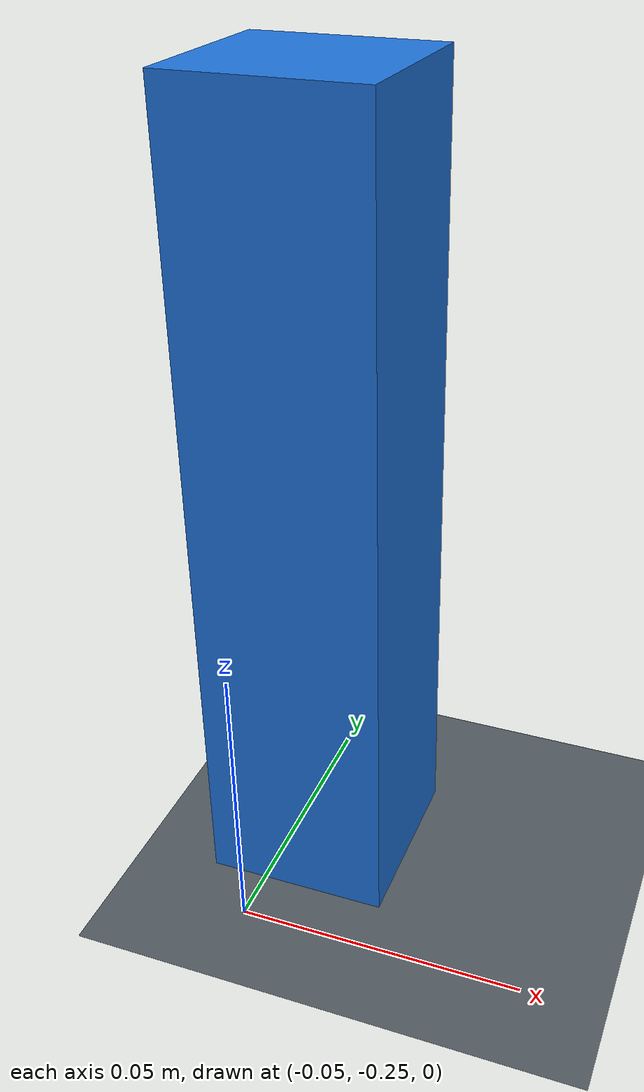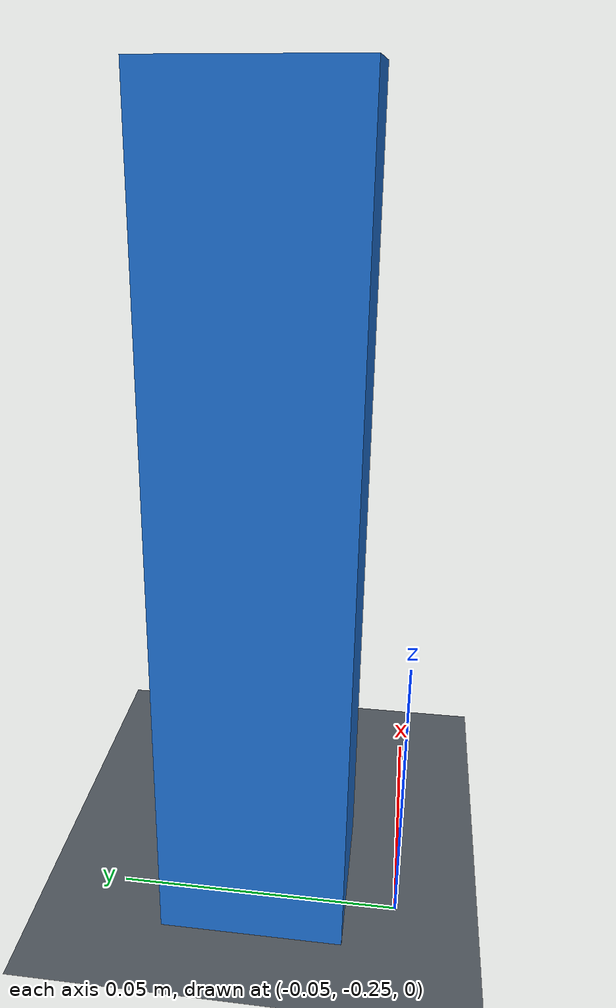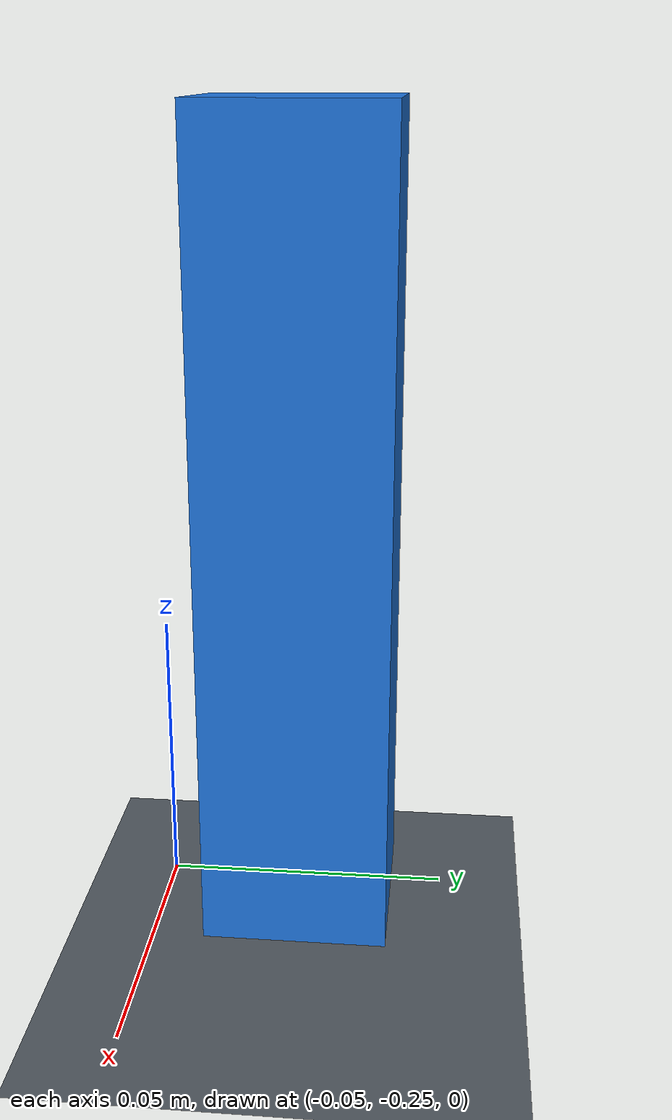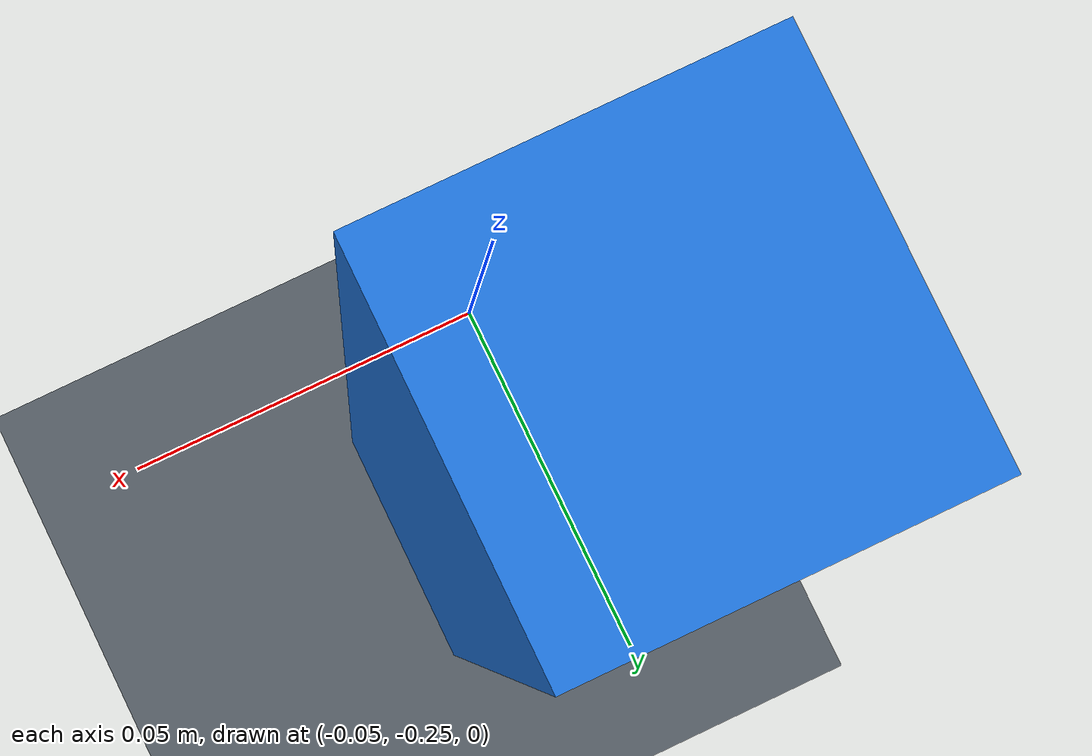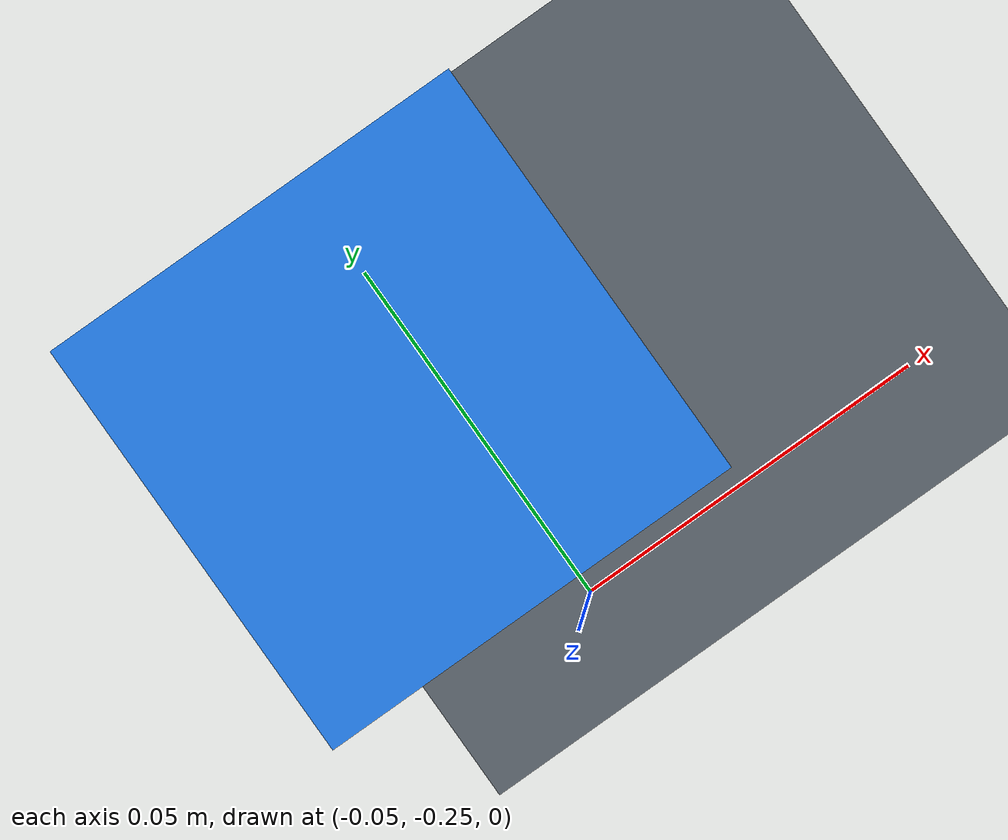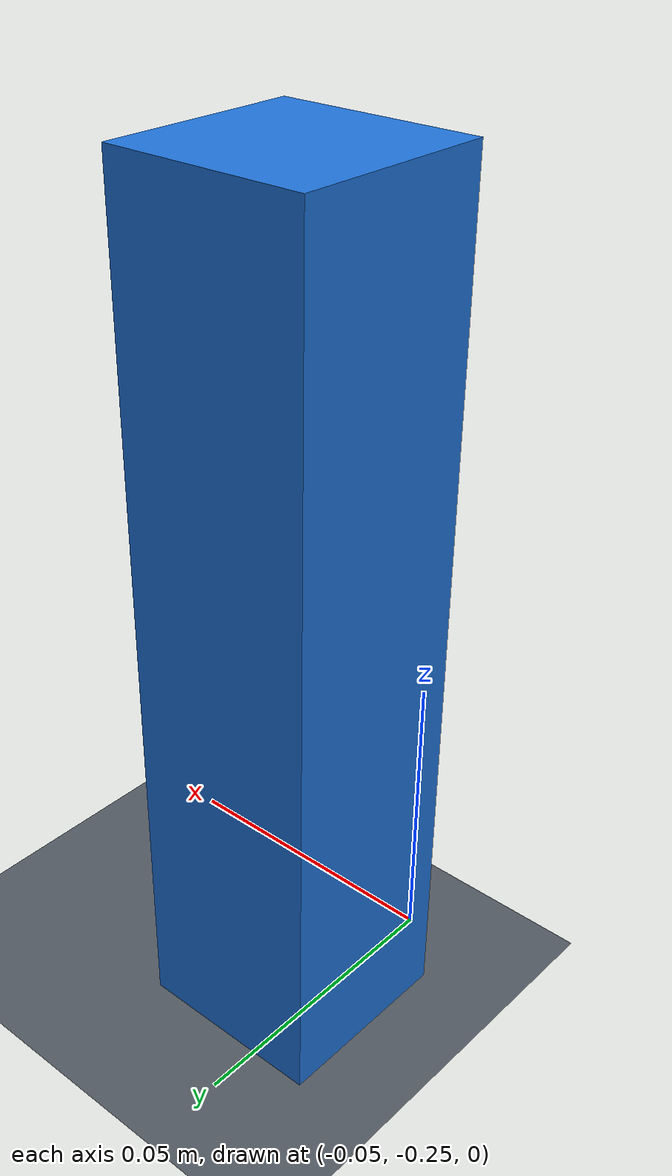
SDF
<sdf version="1.9">
 <world name="pick_and_place">
  <model name="ground">
   <static>true</static>
   <link name="ground_link">
    <collision name="ground_collision">
     <geometry><plane><normal>0 0 1</normal><size>8 8</size></plane></geometry>
    </collision>
    <visual name="ground_visual">
     <geometry><plane><normal>0 0 1</normal><size>8 8</size></plane></geometry>
     <material><diffuse>0.32 0.35 0.38 1</diffuse></material>
    </visual>
   </link>
  </model>
  <model name="pick_support">
   <static>true</static>
   <pose>-0.044 -0.225 0.070 0 0 0</pose>
   <link name="support_link">
    <collision name="pick_support_collision">
     <geometry><box><size>0.032 0.032 0.140</size></box></geometry>
     <surface>
      <friction><ode><mu>0.9</mu><mu2>0.9</mu2></ode></friction>
      <contact><ode><kp>100000</kp><kd>1.0</kd><max_vel>0.01</max_vel><min_depth>0.0001</min_depth></ode></contact>
     </surface>
    </collision>
    <visual name="pick_support_visual">
     <geometry><box><size>0.032 0.032 0.140</size></box></geometry>
     <material><diffuse>0.12 0.45 0.85 1</diffuse></material>
    </visual>
    <sensor name="pick_support_contact_sensor" type="contact">
     <contact><collision>pick_support_collision</collision><topic>/pick_support/contacts</topic></contact>
     <always_on>true</always_on>
     <update_rate>200</update_rate>
    </sensor>
   </link>
  </model>
  <model name="evidence_camera">
   <static>true</static>
   <pose>-0.65 -0.85 1.80 0 0.85 0.86</pose>
   <link name="camera_link">
    <sensor name="a1_evidence_camera" type="camera">
     <topic>/pick_place/evidence/image</topic>
     <update_rate>60</update_rate>
     <always_on>true</always_on>
     <camera>
      <horizontal_fov>1.05</horizontal_fov>
      <image><width>1280</width><height>960</height><format>R8G8B8</format></image>
      <clip><near>0.05</near><far>10.0</far></clip>
     </camera>
    </sensor>
   </link>
  </model>
 </world>
</sdf>
